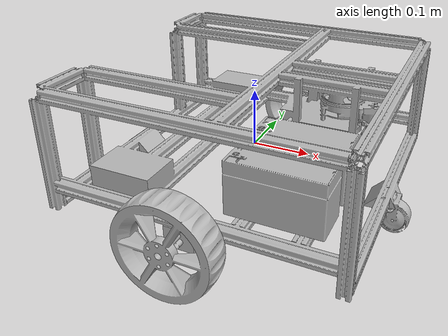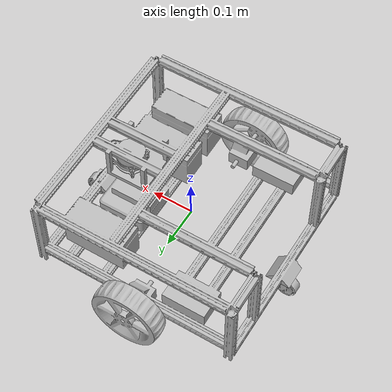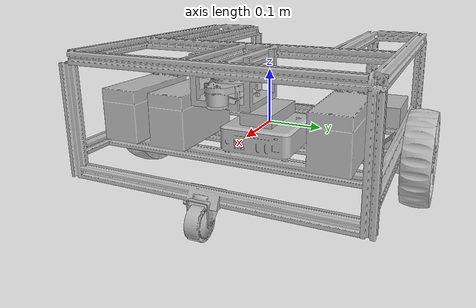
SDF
<?xml version='1.0'?>
<sdf version="1.5">
  <model name="warebot">
    <static>false</static>
    <link name="chassis">
      <inertial>
        <pose>0 0 0.1 0 0 0</pose>
        <mass>60</mass>
        <inertia>
          <!-- http://gazebosim.org/tutorials?tut=inertia&cat=build_robot -->
          <ixx>1.215</ixx>       <!-- for a box: ixx = 0.083 * mass * (y*y + z*z) -->
          <ixy>0.0</ixy>         <!-- for a box: ixy = 0 -->
          <ixz>0.0</ixz>         <!-- for a box: ixz = 0 -->
          <iyy>1.215</iyy>       <!-- for a box: iyy = 0.083 * mass * (x*x + z*z) -->
          <iyz>0.0</iyz>         <!-- for a box: iyz = 0 -->
          <izz>2.075</izz>       <!-- for a box: izz = 0.083 * mass * (x*x + y*y) -->
        </inertia>
      </inertial>

      <collision name="chassis_collision">
        <geometry>
          <mesh>
              <uri>model://warebot/meshes/WareBot_Chassis.dae</uri>
          </mesh>
        </geometry>
      </collision>

      <visual name="chassis_visual">
        <geometry>
            <mesh>
              <uri>model://warebot/meshes/WareBot_Chassis.dae</uri>
            </mesh>
        </geometry>
      </visual>

      <collision name="caster_collision_back">
        <pose>-0.24 0 -0.06 0 0 0</pose>
        <geometry>
          <mesh>
            <uri>model://warebot/meshes/WareBot_Caster.dae</uri>
          </mesh>
        </geometry>

        <surface>
          <friction>
            <ode>
              <mu>0.8</mu>
              <mu2>0.8</mu2>
            </ode>
          </friction>
        </surface>
      </collision>

      <visual name="caster_visual_back">
        <pose>-0.24 0 -0.06 0 0 0</pose>
        <geometry>
          <mesh>
            <uri>model://warebot/meshes/WareBot_Caster.dae</uri>
          </mesh>
        </geometry>
       </visual>

      <collision name="caster_collision_front">
        <pose>0.24 0 -0.04 0 0 3.1416</pose>
        <geometry>
          <mesh>
            <uri>model://warebot/meshes/WareBot_Caster.dae</uri>
          </mesh>
        </geometry>
        <surface>
          <friction>
            <ode>
              <mu>0.8</mu>
              <mu2>0.8</mu2>
            </ode>
          </friction>
        </surface>
      </collision>

      <visual name="caster_visual_front">
        <pose>0.24 0 -0.04 0 0 3.1416</pose>
        <geometry>
          <mesh>
            <uri>model://warebot/meshes/WareBot_Caster.dae</uri>
          </mesh>
        </geometry>
      </visual>
    </link>

    <link name="wheel_left">
      <pose>-0.009 0.27 -0.0308 0 0 0</pose>
      <collision name="wheel_left_collision">
        <geometry>
          <mesh>
            <uri>model://warebot/meshes/WareBot_Wheel.dae</uri>
          </mesh>
        </geometry>
        <surface>
          <friction>
            <ode>
              <mu>0.9</mu>
              <mu2>0.9</mu2>
            </ode>
          </friction>
        </surface>
      </collision>
      <visual name="wheel_left_visual">
        <geometry>
            <mesh>
              <uri>model://warebot/meshes/WareBot_Wheel.dae</uri>
            </mesh>
        </geometry>
      </visual>
    </link>

    <link name="wheel_right">
      <pose>-0.009 -0.27 -0.0308 0 0 3.1416</pose>
      <collision name="wheel_right_collision">
        <geometry>
          <mesh>
            <uri>model://warebot/meshes/WareBot_Wheel.dae</uri>
          </mesh>
        </geometry>
        <surface>
          <friction>
            <ode>
              <mu>0.9</mu>
              <mu2>0.9</mu2>
            </ode>
          </friction>
        </surface>
      </collision>
      <visual name="wheel_right_visual">
        <geometry>
          <mesh>
            <uri>model://warebot/meshes/WareBot_Wheel.dae</uri>
          </mesh>
        </geometry>
      </visual>
    </link>

    <link name="lidar_generic">
      <pose>0 0 0.03 0 0 0</pose>
      <sensor name="laser" type="ray">
        <pose>0.15 0 0.09 0 0 0</pose>
        <ray>
          <scan>
            <horizontal>
              <samples>5000</samples>
              <resolution>0.5</resolution>
              <min_angle>-3.14</min_angle>
              <max_angle>3.14</max_angle>
            </horizontal>
          </scan>
          <range>
            <min>0.08</min>
            <max>10</max>
            <resolution>0.5</resolution>
          </range>
          <noise>
            <!-- Use gaussian noise -->
            <type>gaussian</type>
            <mean>0.0</mean>
            <stddev>0.02</stddev>
          </noise>
        </ray>
        <plugin name="laser" filename="libRayPlugin.so"/>
        <always_on>1</always_on>
        <visualize>true</visualize>
        <update_rate>12</update_rate>
      </sensor>
    </link>

    <joint type="revolute" name="lidar_base">
      <pose>0 0 0 0 0 0</pose>
      <child>lidar_generic</child>
      <parent>chassis</parent>
      <axis>
        <xyz>0 1 0</xyz>
      </axis>
    </joint>

    <joint type="revolute" name="wheel_left_hinge">
      <pose>0 0 0 0 0 0</pose>
      <child>wheel_left</child>
      <parent>chassis</parent>
      <axis>
        <xyz>0 1 0</xyz>
      </axis>
    </joint>

    <joint type="revolute" name="wheel_right_hinge">
      <pose>0 0 0 0 0 3.1416</pose>
      <child>wheel_right</child>
      <parent>chassis</parent>
      <axis>
        <xyz>0 1 0</xyz>
      </axis>
    </joint>

    <plugin name="differential_drive_controller" filename="libgazebo_ros_diff_drive.so">
      <legacyMode>false</legacyMode>
      <alwaysOn>true</alwaysOn>
      <updateRate>20</updateRate>
      <leftJoint>wheel_left_hinge</leftJoint>
      <rightJoint>wheel_right_hinge</rightJoint>
      <wheelSeparation>0.4</wheelSeparation>
      <wheelDiameter>0.1</wheelDiameter>
      <torque>20</torque>
      <commandTopic>cmd_vel</commandTopic>
      <odometryTopic>odom</odometryTopic>
      <odometryFrame>odom</odometryFrame>
      <robotBaseFrame>base_footprint</robotBaseFrame>
      <rosDebugLevel>na</rosDebugLevel>
      <publishWheelTF>false</publishWheelTF>
      <publishOdomTF>true</publishOdomTF>
      <publishWheelJointState>false</publishWheelJointState>
      <wheelAcceleration>0</wheelAcceleration>
      <wheelTorque>20</wheelTorque>
      <odometrySource>world</odometrySource>
      <publishTf>1</publishTf>
    </plugin>

  </model>
</sdf>
